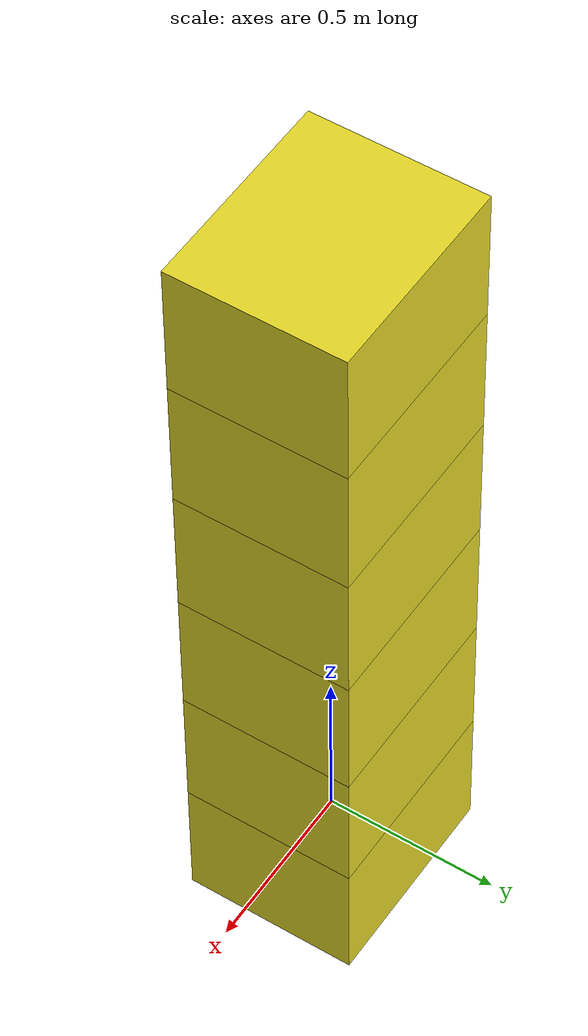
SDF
<?xml version="1.0" encoding="UTF-8"?>
<sdf version='1.4'>
   <model name="baggage_C_x6">
      <model name="baggage_C_0">
         <static>true</static>
         <link name="link">
               <collision name="collision">
                  <geometry>
                     <box>
                        <size>0.6 0.5 0.4</size>
                     </box>
                  </geometry>
               </collision>
               <visual name="visual">
                  <geometry>
                     <box>
                        <size>0.6 0.5 0.4</size>
                     </box>
                  </geometry>
                  <material>
                     <script>
                        <uri>file://media/materials/scripts/gazebo.material</uri>
                        <name>Gazebo/Yellow</name>
                     </script>
                  </material>
               </visual>
            </link>
            <pose frame=''>0 0 0 0 0 0</pose>
      </model>
      <model name="baggage_C_1">
         <static>true</static>
         <link name="link">
               <collision name="collision">
                  <geometry>
                     <box>
                        <size>0.6 0.5 0.4</size>
                     </box>
                  </geometry>
               </collision>
               <visual name="visual">
                  <geometry>
                     <box>
                        <size>0.6 0.5 0.4</size>
                     </box>
                  </geometry>
                  <material>
                     <script>
                        <uri>file://media/materials/scripts/gazebo.material</uri>
                        <name>Gazebo/Yellow</name>
                     </script>
                  </material>
               </visual>
            </link>
            <pose frame=''>0 0 0.4 0 0 0</pose>
      </model>
      <model name="baggage_C_2">
         <static>true</static>
         <link name="link">
               <collision name="collision">
                  <geometry>
                     <box>
                        <size>0.6 0.5 0.4</size>
                     </box>
                  </geometry>
               </collision>
               <visual name="visual">
                  <geometry>
                     <box>
                        <size>0.6 0.5 0.4</size>
                     </box>
                  </geometry>
                  <material>
                     <script>
                        <uri>file://media/materials/scripts/gazebo.material</uri>
                        <name>Gazebo/Yellow</name>
                     </script>
                  </material>
               </visual>
            </link>
            <pose frame=''>0 0 0.8 0 0 0</pose>
      </model>
      <model name="baggage_C_3">
         <static>true</static>
         <link name="link">
               <collision name="collision">
                  <geometry>
                     <box>
                        <size>0.6 0.5 0.4</size>
                     </box>
                  </geometry>
               </collision>
               <visual name="visual">
                  <geometry>
                     <box>
                        <size>0.6 0.5 0.4</size>
                     </box>
                  </geometry>
                  <material>
                     <script>
                        <uri>file://media/materials/scripts/gazebo.material</uri>
                        <name>Gazebo/Yellow</name>
                     </script>
                  </material>
               </visual>
            </link>
            <pose frame=''>0 0 1.2 0 0 0</pose>
      </model>
      <model name="baggage_C_4">
         <static>true</static>
         <link name="link">
               <collision name="collision">
                  <geometry>
                     <box>
                        <size>0.6 0.5 0.4</size>
                     </box>
                  </geometry>
               </collision>
               <visual name="visual">
                  <geometry>
                     <box>
                        <size>0.6 0.5 0.4</size>
                     </box>
                  </geometry>
                  <material>
                     <script>
                        <uri>file://media/materials/scripts/gazebo.material</uri>
                        <name>Gazebo/Yellow</name>
                     </script>
                  </material>
               </visual>
            </link>
            <pose frame=''>0 0 1.6 0 0 0</pose>
      </model>
      <model name="baggage_C_5">
         <static>true</static>
         <link name="link">
               <collision name="collision">
                  <geometry>
                     <box>
                        <size>0.6 0.5 0.4</size>
                     </box>
                  </geometry>
               </collision>
               <visual name="visual">
                  <geometry>
                     <box>
                        <size>0.6 0.5 0.4</size>
                     </box>
                  </geometry>
                  <material>
                     <script>
                        <uri>file://media/materials/scripts/gazebo.material</uri>
                        <name>Gazebo/Yellow</name>
                     </script>
                  </material>
               </visual>
            </link>
            <pose frame=''>0 0 2.0 0 0 0</pose>
      </model>
   </model>
</sdf>
